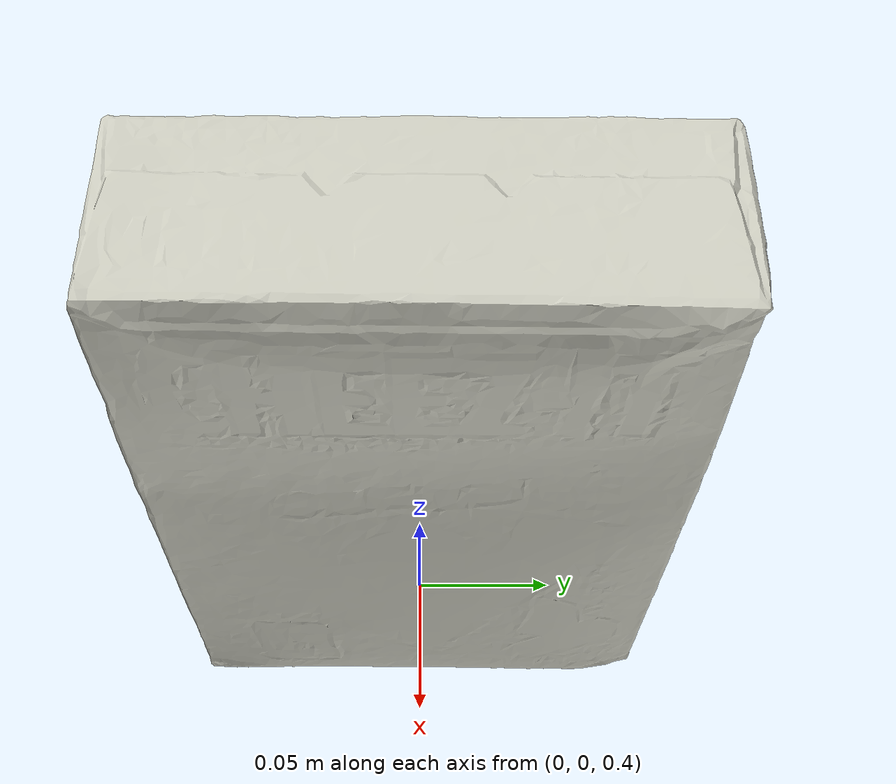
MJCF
<mujoco>
  <asset>
    <mesh name="003_cracker_box_visual" file="objects/003_cracker_box/visual.stl" />
    <mesh name="003_cracker_box_col_00" file="objects/003_cracker_box/collision/003_cracker_box_00.stl" />
    <mesh name="003_cracker_box_col_01" file="objects/003_cracker_box/collision/003_cracker_box_01.stl" />
    <mesh name="003_cracker_box_col_02" file="objects/003_cracker_box/collision/003_cracker_box_02.stl" />
    <mesh name="003_cracker_box_col_03" file="objects/003_cracker_box/collision/003_cracker_box_03.stl" />
    <mesh name="003_cracker_box_col_04" file="objects/003_cracker_box/collision/003_cracker_box_04.stl" />
    <mesh name="003_cracker_box_col_05" file="objects/003_cracker_box/collision/003_cracker_box_05.stl" />
    <mesh name="003_cracker_box_col_06" file="objects/003_cracker_box/collision/003_cracker_box_06.stl" />
    <mesh name="003_cracker_box_col_07" file="objects/003_cracker_box/collision/003_cracker_box_07.stl" />
    <mesh name="003_cracker_box_col_08" file="objects/003_cracker_box/collision/003_cracker_box_08.stl" />
    <mesh name="003_cracker_box_col_09" file="objects/003_cracker_box/collision/003_cracker_box_09.stl" />
    <mesh name="003_cracker_box_col_10" file="objects/003_cracker_box/collision/003_cracker_box_10.stl" />
    <mesh name="003_cracker_box_col_11" file="objects/003_cracker_box/collision/003_cracker_box_11.stl" />
    <mesh name="003_cracker_box_col_12" file="objects/003_cracker_box/collision/003_cracker_box_12.stl" />
    <mesh name="003_cracker_box_col_13" file="objects/003_cracker_box/collision/003_cracker_box_13.stl" />
    <mesh name="003_cracker_box_col_14" file="objects/003_cracker_box/collision/003_cracker_box_14.stl" />
    <mesh name="003_cracker_box_col_15" file="objects/003_cracker_box/collision/003_cracker_box_15.stl" />
    <mesh name="003_cracker_box_col_16" file="objects/003_cracker_box/collision/003_cracker_box_16.stl" />
    <mesh name="003_cracker_box_col_17" file="objects/003_cracker_box/collision/003_cracker_box_17.stl" />
    <mesh name="003_cracker_box_col_18" file="objects/003_cracker_box/collision/003_cracker_box_18.stl" />
    <mesh name="003_cracker_box_col_19" file="objects/003_cracker_box/collision/003_cracker_box_19.stl" />
    <mesh name="003_cracker_box_col_20" file="objects/003_cracker_box/collision/003_cracker_box_20.stl" />
    <mesh name="003_cracker_box_col_21" file="objects/003_cracker_box/collision/003_cracker_box_21.stl" />
    <mesh name="003_cracker_box_col_22" file="objects/003_cracker_box/collision/003_cracker_box_22.stl" />
    <mesh name="003_cracker_box_col_23" file="objects/003_cracker_box/collision/003_cracker_box_23.stl" />
    <mesh name="003_cracker_box_col_24" file="objects/003_cracker_box/collision/003_cracker_box_24.stl" />
    <mesh name="003_cracker_box_col_25" file="objects/003_cracker_box/collision/003_cracker_box_25.stl" />
    <mesh name="003_cracker_box_col_26" file="objects/003_cracker_box/collision/003_cracker_box_26.stl" />
    <mesh name="003_cracker_box_col_27" file="objects/003_cracker_box/collision/003_cracker_box_27.stl" />
    <mesh name="003_cracker_box_col_28" file="objects/003_cracker_box/collision/003_cracker_box_28.stl" />
    <mesh name="003_cracker_box_col_29" file="objects/003_cracker_box/collision/003_cracker_box_29.stl" />
    <mesh name="003_cracker_box_col_30" file="objects/003_cracker_box/collision/003_cracker_box_30.stl" />
    <mesh name="003_cracker_box_col_31" file="objects/003_cracker_box/collision/003_cracker_box_31.stl" />
  </asset>
  <worldbody>
    <body name="003_cracker_box" pos="0 0 0.5">
      <freejoint name="003_cracker_box_free" />
      <geom type="mesh" mesh="003_cracker_box_visual" contype="0" conaffinity="0" group="2" rgba="0.8 0.8 0.75 1" />
      <geom type="mesh" mesh="003_cracker_box_col_00" group="3" condim="4" friction="0.8 0.01 0.001" density="1000" solref="0.005 1" solimp="0.9 0.98 0.001" />
      <geom type="mesh" mesh="003_cracker_box_col_01" group="3" condim="4" friction="0.8 0.01 0.001" density="1000" solref="0.005 1" solimp="0.9 0.98 0.001" />
      <geom type="mesh" mesh="003_cracker_box_col_02" group="3" condim="4" friction="0.8 0.01 0.001" density="1000" solref="0.005 1" solimp="0.9 0.98 0.001" />
      <geom type="mesh" mesh="003_cracker_box_col_03" group="3" condim="4" friction="0.8 0.01 0.001" density="1000" solref="0.005 1" solimp="0.9 0.98 0.001" />
      <geom type="mesh" mesh="003_cracker_box_col_04" group="3" condim="4" friction="0.8 0.01 0.001" density="1000" solref="0.005 1" solimp="0.9 0.98 0.001" />
      <geom type="mesh" mesh="003_cracker_box_col_05" group="3" condim="4" friction="0.8 0.01 0.001" density="1000" solref="0.005 1" solimp="0.9 0.98 0.001" />
      <geom type="mesh" mesh="003_cracker_box_col_06" group="3" condim="4" friction="0.8 0.01 0.001" density="1000" solref="0.005 1" solimp="0.9 0.98 0.001" />
      <geom type="mesh" mesh="003_cracker_box_col_07" group="3" condim="4" friction="0.8 0.01 0.001" density="1000" solref="0.005 1" solimp="0.9 0.98 0.001" />
      <geom type="mesh" mesh="003_cracker_box_col_08" group="3" condim="4" friction="0.8 0.01 0.001" density="1000" solref="0.005 1" solimp="0.9 0.98 0.001" />
      <geom type="mesh" mesh="003_cracker_box_col_09" group="3" condim="4" friction="0.8 0.01 0.001" density="1000" solref="0.005 1" solimp="0.9 0.98 0.001" />
      <geom type="mesh" mesh="003_cracker_box_col_10" group="3" condim="4" friction="0.8 0.01 0.001" density="1000" solref="0.005 1" solimp="0.9 0.98 0.001" />
      <geom type="mesh" mesh="003_cracker_box_col_11" group="3" condim="4" friction="0.8 0.01 0.001" density="1000" solref="0.005 1" solimp="0.9 0.98 0.001" />
      <geom type="mesh" mesh="003_cracker_box_col_12" group="3" condim="4" friction="0.8 0.01 0.001" density="1000" solref="0.005 1" solimp="0.9 0.98 0.001" />
      <geom type="mesh" mesh="003_cracker_box_col_13" group="3" condim="4" friction="0.8 0.01 0.001" density="1000" solref="0.005 1" solimp="0.9 0.98 0.001" />
      <geom type="mesh" mesh="003_cracker_box_col_14" group="3" condim="4" friction="0.8 0.01 0.001" density="1000" solref="0.005 1" solimp="0.9 0.98 0.001" />
      <geom type="mesh" mesh="003_cracker_box_col_15" group="3" condim="4" friction="0.8 0.01 0.001" density="1000" solref="0.005 1" solimp="0.9 0.98 0.001" />
      <geom type="mesh" mesh="003_cracker_box_col_16" group="3" condim="4" friction="0.8 0.01 0.001" density="1000" solref="0.005 1" solimp="0.9 0.98 0.001" />
      <geom type="mesh" mesh="003_cracker_box_col_17" group="3" condim="4" friction="0.8 0.01 0.001" density="1000" solref="0.005 1" solimp="0.9 0.98 0.001" />
      <geom type="mesh" mesh="003_cracker_box_col_18" group="3" condim="4" friction="0.8 0.01 0.001" density="1000" solref="0.005 1" solimp="0.9 0.98 0.001" />
      <geom type="mesh" mesh="003_cracker_box_col_19" group="3" condim="4" friction="0.8 0.01 0.001" density="1000" solref="0.005 1" solimp="0.9 0.98 0.001" />
      <geom type="mesh" mesh="003_cracker_box_col_20" group="3" condim="4" friction="0.8 0.01 0.001" density="1000" solref="0.005 1" solimp="0.9 0.98 0.001" />
      <geom type="mesh" mesh="003_cracker_box_col_21" group="3" condim="4" friction="0.8 0.01 0.001" density="1000" solref="0.005 1" solimp="0.9 0.98 0.001" />
      <geom type="mesh" mesh="003_cracker_box_col_22" group="3" condim="4" friction="0.8 0.01 0.001" density="1000" solref="0.005 1" solimp="0.9 0.98 0.001" />
      <geom type="mesh" mesh="003_cracker_box_col_23" group="3" condim="4" friction="0.8 0.01 0.001" density="1000" solref="0.005 1" solimp="0.9 0.98 0.001" />
      <geom type="mesh" mesh="003_cracker_box_col_24" group="3" condim="4" friction="0.8 0.01 0.001" density="1000" solref="0.005 1" solimp="0.9 0.98 0.001" />
      <geom type="mesh" mesh="003_cracker_box_col_25" group="3" condim="4" friction="0.8 0.01 0.001" density="1000" solref="0.005 1" solimp="0.9 0.98 0.001" />
      <geom type="mesh" mesh="003_cracker_box_col_26" group="3" condim="4" friction="0.8 0.01 0.001" density="1000" solref="0.005 1" solimp="0.9 0.98 0.001" />
      <geom type="mesh" mesh="003_cracker_box_col_27" group="3" condim="4" friction="0.8 0.01 0.001" density="1000" solref="0.005 1" solimp="0.9 0.98 0.001" />
      <geom type="mesh" mesh="003_cracker_box_col_28" group="3" condim="4" friction="0.8 0.01 0.001" density="1000" solref="0.005 1" solimp="0.9 0.98 0.001" />
      <geom type="mesh" mesh="003_cracker_box_col_29" group="3" condim="4" friction="0.8 0.01 0.001" density="1000" solref="0.005 1" solimp="0.9 0.98 0.001" />
      <geom type="mesh" mesh="003_cracker_box_col_30" group="3" condim="4" friction="0.8 0.01 0.001" density="1000" solref="0.005 1" solimp="0.9 0.98 0.001" />
      <geom type="mesh" mesh="003_cracker_box_col_31" group="3" condim="4" friction="0.8 0.01 0.001" density="1000" solref="0.005 1" solimp="0.9 0.98 0.001" />
    </body>
  </worldbody>
</mujoco>
